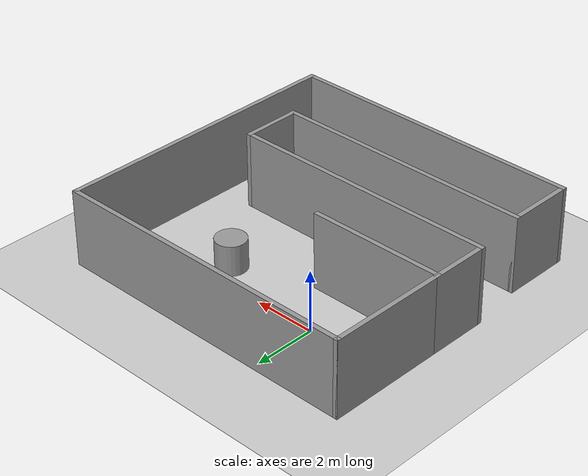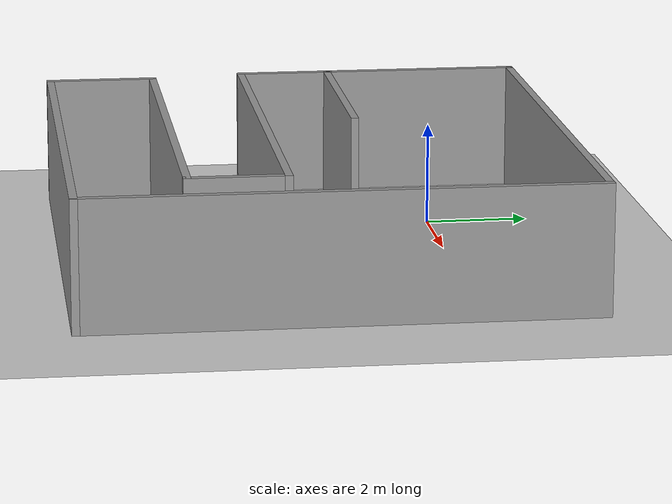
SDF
<sdf version="1.6">
 <world name="default">
  <light name="sun" type="directional">
   <pose>0 0 10 0 -0 0</pose>
   <diffuse>0.8 0.8 0.8 1</diffuse>
   <specular>0.1 0.1 0.1 1</specular>
   <attenuation>
    <range>1000</range>
    <constant>0.9</constant>
    <linear>0.01</linear>
    <quadratic>0.001</quadratic>
   </attenuation>
   <direction>-0.5 0.5 -1</direction>
  </light>
  <model name="ground_plane">
   <static>1</static>
   <link name="link">
    <collision name="collision">
     <geometry><plane><normal>0 0 1</normal><size>100 100</size></plane></geometry>
     <surface><friction><ode><mu>100</mu><mu2>50</mu2></ode></friction></surface>
    </collision>
    <visual name="visual">
     <cast_shadows>0</cast_shadows>
     <geometry><plane><normal>0 0 1</normal><size>100 100</size></plane></geometry>
     <material>
      <script><uri>file://media/materials/scripts/gazebo.material</uri><name>Gazebo/Grey</name></script>
     </material>
    </visual>
   </link>
  </model>
  <gravity>0 0 -9.8</gravity>
  <magnetic_field>6e-06 2.3e-05 -4.2e-05</magnetic_field>
  <atmosphere type="adiabatic"/>
  <physics name="default_physics" default="0" type="ode">
   <max_step_size>0.001</max_step_size>
   <real_time_factor>1</real_time_factor>
   <real_time_update_rate>1000</real_time_update_rate>
  </physics>
  <scene><ambient>0.4 0.4 0.4 1</ambient><background>0.7 0.7 0.7 1</background><shadows>1</shadows></scene>
  <spherical_coordinates>
   <surface_model>EARTH_WGS84</surface_model>
   <latitude_deg>0</latitude_deg>
   <longitude_deg>0</longitude_deg>
   <elevation>0</elevation>
   <heading_deg>0</heading_deg>
  </spherical_coordinates>
  <model name="2020-test">
   <pose>2.01431 -2.61155 0 0 -0 0</pose>
   <link name="Wall_0">
    <collision name="Wall_0_Collision">
     <geometry><box><size>4.5 0.15 2.5</size></box></geometry>
     <pose>0 0 1.25 0 -0 0</pose>
    </collision>
    <visual name="Wall_0_Visual">
     <pose>0 0 1.25 0 -0 0</pose>
     <geometry><box><size>4.5 0.15 2.5</size></box></geometry>
     <material>
      <script><uri>file://media/materials/scripts/gazebo.material</uri><name>Gazebo/Grey</name></script>
      <ambient>1 1 1 1</ambient>
     </material>
    </visual>
    <pose>-2.875 0.95 0 0 -0 3.14159</pose>
   </link>
   <link name="Wall_1">
    <collision name="Wall_1_Collision">
     <geometry><box><size>4 0.15 2.5</size></box></geometry>
     <pose>0 0 1.25 0 -0 0</pose>
    </collision>
    <visual name="Wall_1_Visual">
     <pose>0 0 1.25 0 -0 0</pose>
     <geometry><box><size>4 0.15 2.5</size></box></geometry>
     <material>
      <script><uri>file://media/materials/scripts/gazebo.material</uri><name>Gazebo/Grey</name></script>
      <ambient>1 1 1 1</ambient>
     </material>
    </visual>
    <pose>-5.05 2.875 0 0 -0 1.5708</pose>
   </link>
   <link name="Wall_2">
    <collision name="Wall_2_Collision">
     <geometry><box><size>10.25 0.15 2.5</size></box></geometry>
     <pose>0 0 1.25 0 -0 0</pose>
    </collision>
    <visual name="Wall_2_Visual">
     <pose>0 0 1.25 0 -0 0</pose>
     <geometry><box><size>10.25 0.15 2.5</size></box></geometry>
     <material>
      <script><uri>file://media/materials/scripts/gazebo.material</uri><name>Gazebo/Grey</name></script>
      <ambient>1 1 1 1</ambient>
     </material>
    </visual>
    <pose>0 4.8 0 0 -0 0</pose>
   </link>
   <link name="Wall_3">
    <collision name="Wall_3_Collision">
     <geometry><box><size>9.75 0.15 2.5</size></box></geometry>
     <pose>0 0 1.25 0 -0 0</pose>
    </collision>
    <visual name="Wall_3_Visual">
     <pose>0 0 1.25 0 -0 0</pose>
     <geometry><box><size>9.75 0.15 2.5</size></box></geometry>
     <material>
      <script><uri>file://media/materials/scripts/gazebo.material</uri><name>Gazebo/Grey</name></script>
      <ambient>1 1 1 1</ambient>
     </material>
    </visual>
    <pose>5.05 0 0 0 0 -1.5708</pose>
   </link>
   <link name="Wall_4">
    <collision name="Wall_4_Collision">
     <geometry><box><size>10 0.15 2.5</size></box></geometry>
     <pose>0 0 1.25 0 -0 0</pose>
    </collision>
    <visual name="Wall_4_Visual">
     <pose>0 0 1.25 0 -0 0</pose>
     <geometry><box><size>10 0.15 2.5</size></box></geometry>
     <material>
      <script><uri>file://media/materials/scripts/gazebo.material</uri><name>Gazebo/Grey</name></script>
      <ambient>1 1 1 1</ambient>
     </material>
    </visual>
    <pose>0.125 -4.8 0 0 -0 3.14159</pose>
   </link>
   <link name="Wall_5">
    <collision name="Wall_5_Collision">
     <geometry><box><size>2.25 0.15 2.5</size></box></geometry>
     <pose>0 0 1.25 0 -0 0</pose>
    </collision>
    <visual name="Wall_5_Visual">
     <pose>0 0 1.25 0 -0 0</pose>
     <geometry><box><size>2.25 0.15 2.5</size></box></geometry>
     <material>
      <script><uri>file://media/materials/scripts/gazebo.material</uri><name>Gazebo/Grey</name></script>
      <ambient>1 1 1 1</ambient>
     </material>
    </visual>
    <pose>-4.8 -3.75 0 0 -0 1.5708</pose>
   </link>
   <link name="Wall_6">
    <collision name="Wall_6_Collision">
     <geometry><box><size>8.75 0.15 2.5</size></box></geometry>
     <pose>0 0 1.25 0 -0 0</pose>
    </collision>
    <visual name="Wall_6_Visual">
     <pose>0 0 1.25 0 -0 0</pose>
     <geometry><box><size>8.75 0.15 2.5</size></box></geometry>
     <material>
      <script><uri>file://media/materials/scripts/gazebo.material</uri><name>Gazebo/Grey</name></script>
      <ambient>1 1 1 1</ambient>
     </material>
    </visual>
    <pose>-0.5 -2.7 0 0 -0 0</pose>
   </link>
   <link name="Wall_7">
    <collision name="Wall_7_Collision">
     <geometry><box><size>2 0.15 2.5</size></box></geometry>
     <pose>0 0 1.25 0 -0 0</pose>
    </collision>
    <visual name="Wall_7_Visual">
     <pose>0 0 1.25 0 -0 0</pose>
     <geometry><box><size>2 0.15 2.5</size></box></geometry>
     <material>
      <script><uri>file://media/materials/scripts/gazebo.material</uri><name>Gazebo/Grey</name></script>
      <ambient>1 1 1 1</ambient>
     </material>
    </visual>
    <pose>3.8 -1.775 0 0 -0 1.5708</pose>
   </link>
   <link name="Wall_8">
    <collision name="Wall_8_Collision">
     <geometry><box><size>9 0.15 2.5</size></box></geometry>
     <pose>0 0 1.25 0 -0 0</pose>
    </collision>
    <visual name="Wall_8_Visual">
     <pose>0 0 1.25 0 -0 0</pose>
     <geometry><box><size>9 0.15 2.5</size></box></geometry>
     <material>
      <script><uri>file://media/materials/scripts/gazebo.material</uri><name>Gazebo/Grey</name></script>
      <ambient>1 1 1 1</ambient>
     </material>
    </visual>
    <pose>-0.625 -0.85 0 0 -0 3.14159</pose>
   </link>
   <link name="Wall_9">
    <collision name="Wall_9_Collision">
     <geometry><box><size>2 0.15 2.5</size></box></geometry>
     <pose>0 0 1.25 0 -0 0</pose>
    </collision>
    <visual name="Wall_9_Visual">
     <pose>0 0 1.25 0 -0 0</pose>
     <geometry><box><size>2 0.15 2.5</size></box></geometry>
     <material>
      <script><uri>file://media/materials/scripts/gazebo.material</uri><name>Gazebo/Grey</name></script>
      <ambient>1 1 1 1</ambient>
     </material>
    </visual>
    <pose>-5.05 0.075 0 0 -0 1.5708</pose>
   </link>
   <static>1</static>
  </model>
  <model name="unit_cylinder_0">
   <pose>3.83731 -0.706164 0.499997 3e-06 4e-06 -0</pose>
   <link name="link">
    <inertial>
     <mass>1</mass>
     <inertia><ixx>0.145833</ixx><ixy>0</ixy><ixz>0</ixz><iyy>0.145833</iyy><iyz>0</iyz><izz>0.125</izz></inertia>
    </inertial>
    <collision name="collision">
     <geometry><cylinder><radius>0.5</radius><length>1</length></cylinder></geometry>
    </collision>
    <visual name="visual">
     <geometry><cylinder><radius>0.5</radius><length>1</length></cylinder></geometry>
     <material>
      <script><name>Gazebo/Grey</name><uri>file://media/materials/scripts/gazebo.material</uri></script>
     </material>
    </visual>
   </link>
  </model>
  <model name="unit_box_0">
   <pose>3.033 -6.65007 0.5 0 0 -0.53993</pose>
   <link name="link">
    <inertial>
     <mass>1</mass>
     <inertia>
      <ixx>0.166667</ixx>
      <ixy>0</ixy>
      <ixz>0</ixz>
      <iyy>0.166667</iyy>
      <iyz>0</iyz>
      <izz>0.166667</izz>
     </inertia>
    </inertial>
    <collision name="collision"><geometry><box><size>1 1 1</size></box></geometry></collision>
    <visual name="visual">
     <geometry><box><size>1 1 1</size></box></geometry>
     <material>
      <script><name>Gazebo/Grey</name><uri>file://media/materials/scripts/gazebo.material</uri></script>
     </material>
    </visual>
   </link>
  </model>
 </world>
</sdf>
